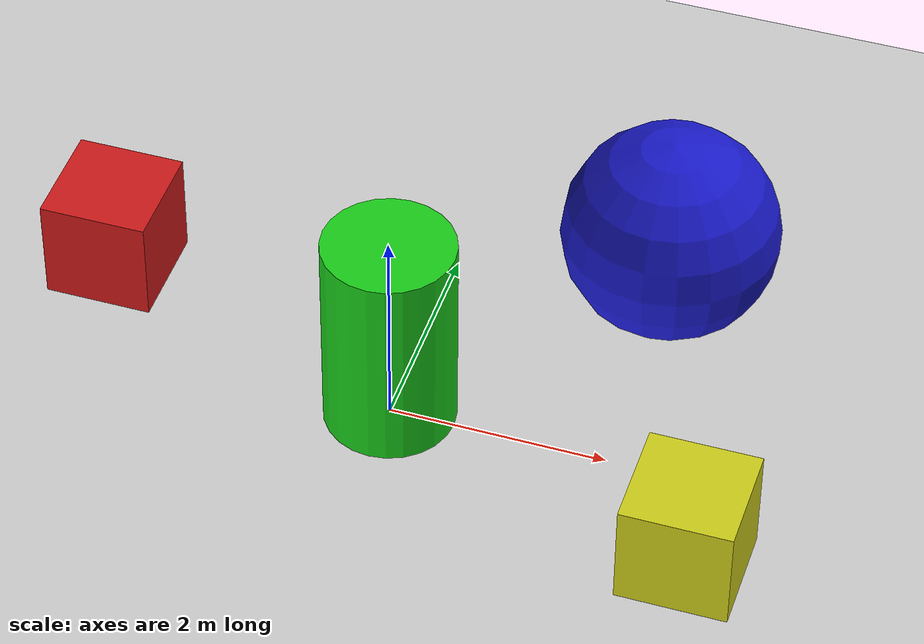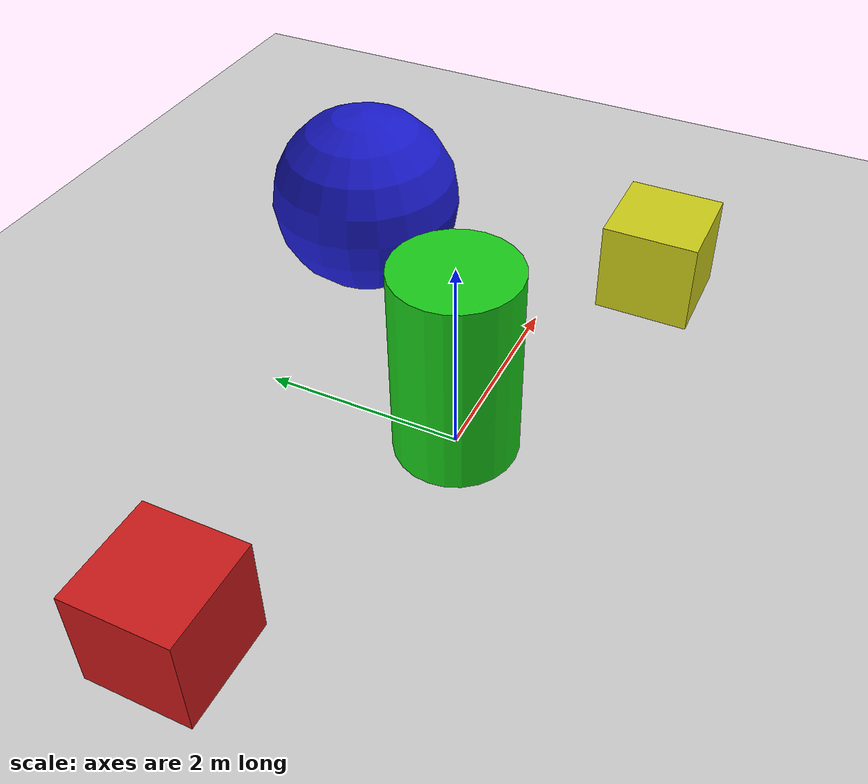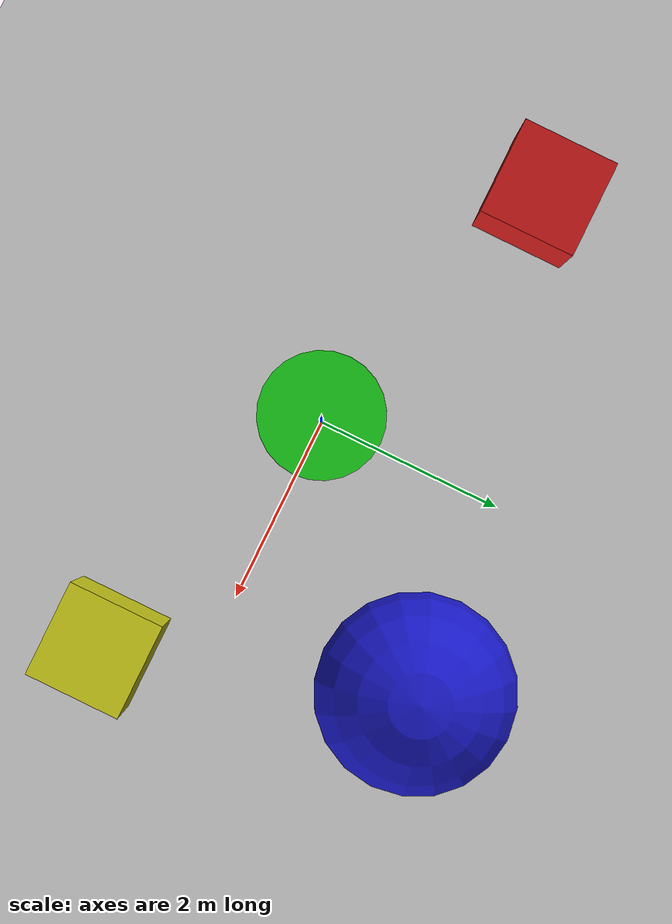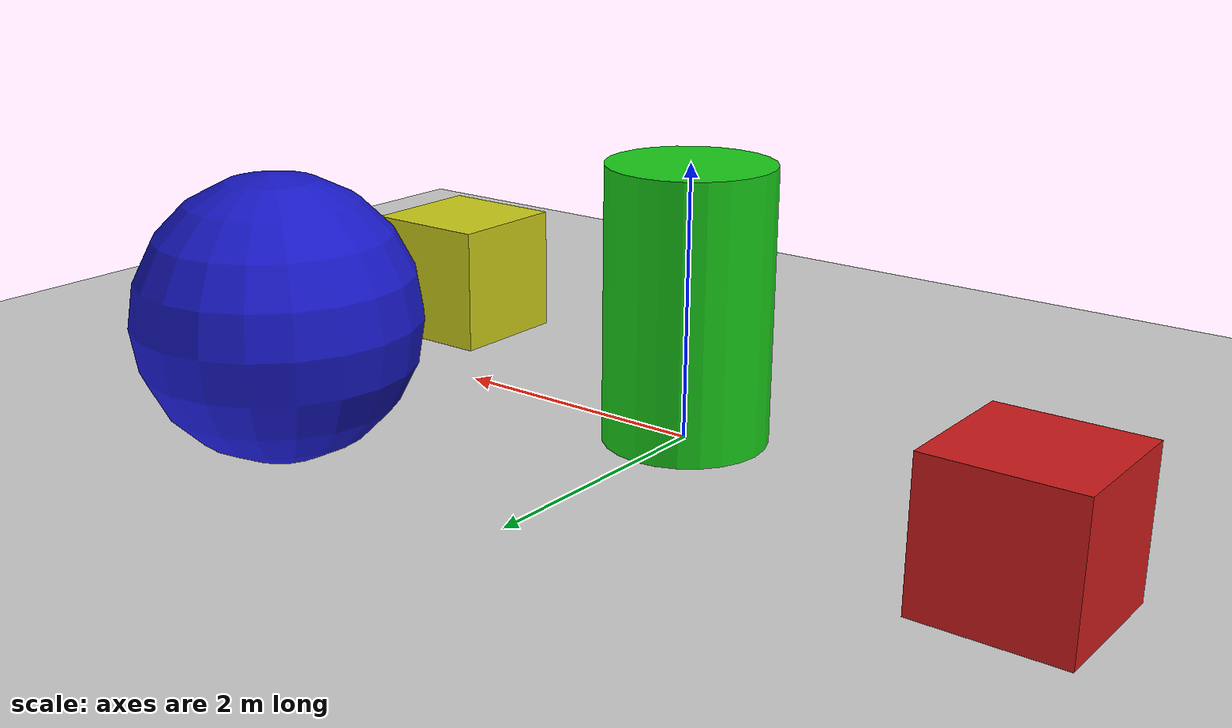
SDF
<sdf version="1.6">
  <world name="default">
    <physics name="1ms" type="ignored">
      <max_step_size>0.001</max_step_size>
      <real_time_factor>1.0</real_time_factor>
    </physics>

    <plugin filename="libignition-gazebo-physics-system.so"
            name="ignition::gazebo::systems::Physics"/>
    <plugin filename="libignition-gazebo-user-commands-system.so"
            name="ignition::gazebo::systems::UserCommands"/>
    <plugin filename="libignition-gazebo-scene-broadcaster-system.so"
            name="ignition::gazebo::systems::SceneBroadcaster"/>
    <plugin filename="libignition-gazebo-sensors-system.so"
            name="ignition::gazebo::systems::Sensors"/>

    <!-- Ground -->
    <model name="ground_plane">
      <static>true</static>
      <link name="link">
        <collision name="collision">
          <geometry>
            <plane>
              <normal>0 0 1</normal>
              <size>100 100</size>
            </plane>
          </geometry>
        </collision>
        <visual name="visual">
          <geometry>
            <plane>
              <normal>0 0 1</normal>
              <size>100 100</size>
            </plane>
          </geometry>
          <material>
            <ambient>0.8 0.8 0.8 1</ambient>
            <diffuse>0.8 0.8 0.8 1</diffuse>
            <specular>0.1 0.1 0.1 1</specular>
          </material>
        </visual>
      </link>
    </model>

    <!-- Walls like before (north/south/east/west) – can copy from lab diff_drive.sdf -->
    <!-- Here keep them but shorter, just for enclosure -->
    <!-- ... you can reuse your existing diff_drive walls here if you like ... -->

    <!-- Red cube -->
    <model name="red_cube">
      <static>true</static>
      <pose>-3 1 0.5 0 0 0</pose>
      <link name="link">
        <collision name="collision">
          <geometry>
            <box>
              <size>1 1 1</size>
            </box>
          </geometry>
        </collision>
        <visual name="visual">
          <geometry>
            <box>
              <size>1 1 1</size>
            </box>
          </geometry>
          <material>
            <ambient>0.8 0.1 0.1 1</ambient>
            <diffuse>0.8 0.1 0.1 1</diffuse>
          </material>
        </visual>
      </link>
    </model>

    <!-- Green cylinder -->
    <model name="green_cylinder">
      <static>true</static>
      <pose>0 0 1 0 0 0</pose>
      <link name="link">
        <collision name="collision">
          <geometry>
            <cylinder>
              <radius>0.6</radius>
              <length>2</length>
            </cylinder>
          </geometry>
        </collision>
        <visual name="visual">
          <geometry>
            <cylinder>
              <radius>0.6</radius>
              <length>2</length>
            </cylinder>
          </geometry>
          <material>
            <ambient>0.1 0.8 0.1 1</ambient>
            <diffuse>0.1 0.8 0.1 1</diffuse>
          </material>
        </visual>
      </link>
    </model>

    <!-- Blue sphere -->
    <model name="blue_sphere">
      <static>true</static>
      <pose>2 2 1 0 0 0</pose>
      <link name="link">
        <collision name="collision">
          <geometry>
            <sphere>
              <radius>1</radius>
            </sphere>
          </geometry>
        </collision>
        <visual name="visual">
          <geometry>
            <sphere>
              <radius>1</radius>
            </sphere>
          </geometry>
          <material>
            <ambient>0.1 0.1 0.8 1</ambient>
            <diffuse>0.1 0.1 0.8 1</diffuse>
          </material>
        </visual>
      </link>
    </model>

    <!-- Yellow pyramid-ish (tapered box placeholder) -->
    <model name="yellow_pyramid">
      <static>true</static>
      <pose>3 -1 0.5 0 0 0</pose>
      <link name="link">
        <collision name="collision">
          <geometry>
            <box>
              <size>1 1 1</size>
            </box>
          </geometry>
        </collision>
        <visual name="visual">
          <geometry>
            <box>
              <size>1 1 1</size>
            </box>
          </geometry>
          <material>
            <ambient>0.8 0.8 0.1 1</ambient>
            <diffuse>0.8 0.8 0.1 1</diffuse>
          </material>
        </visual>
      </link>
    </model>

    <light type="directional" name="sun">
      <cast_shadows>true</cast_shadows>
      <pose>0 0 10 0 0 0</pose>
      <diffuse>0.8 0.8 0.8 1</diffuse>
      <specular>0.2 0.2 0.2 1</specular>
      <direction>-0.5 0.1 -0.9</direction>
    </light>

    <gravity>0 0 -9.8</gravity>
  </world>
</sdf>
